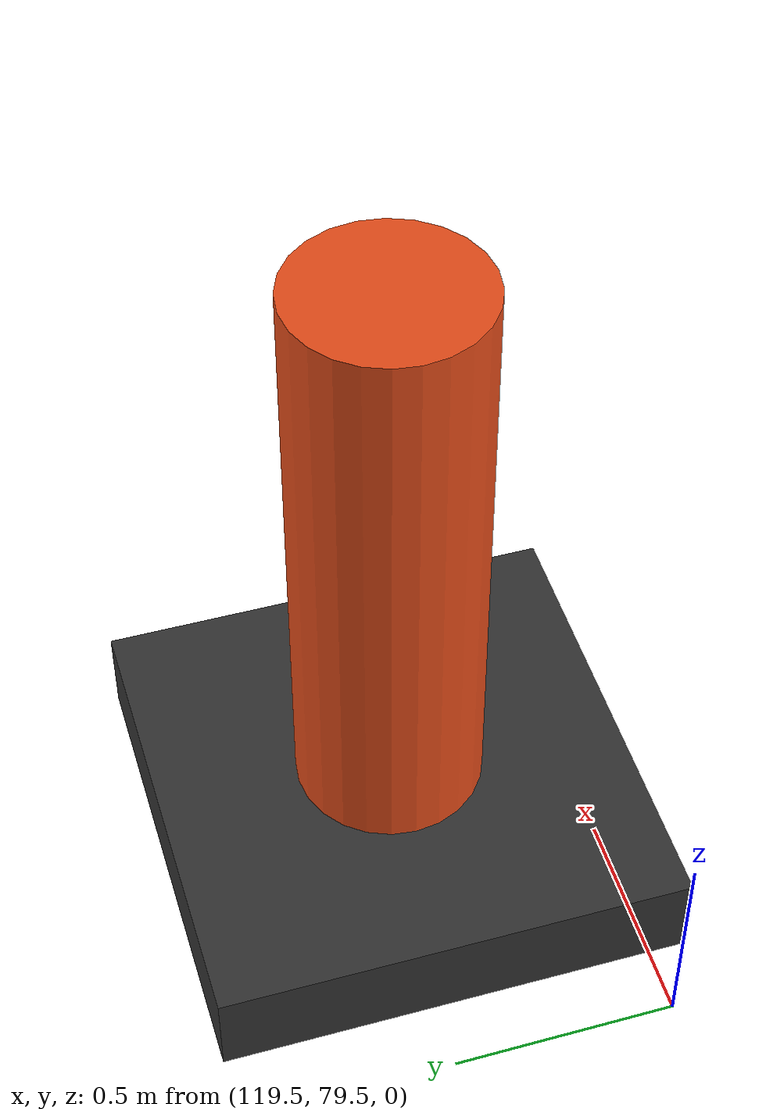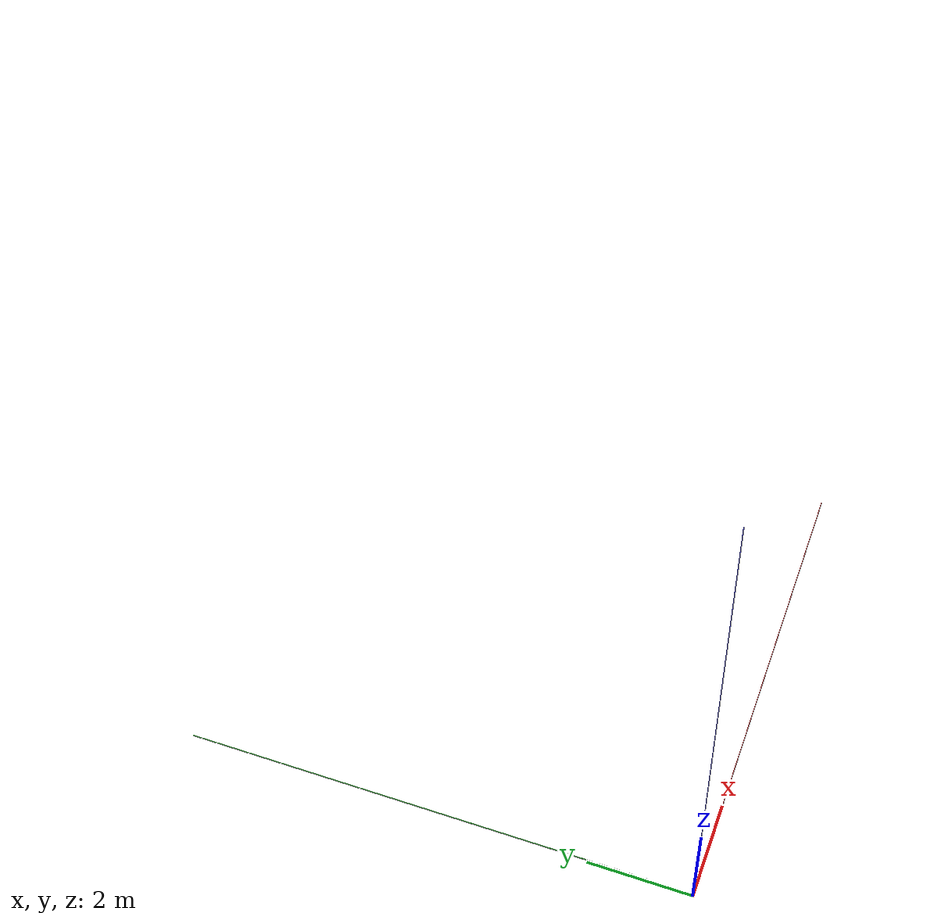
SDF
<sdf version="1.9">
 <world name="fox_hunt_iris_runway">
  <physics name="1ms" type="ignore">
   <max_step_size>0.001</max_step_size>
   <real_time_factor>1.0</real_time_factor>
  </physics>
  <plugin filename="gz-sim-physics-system" name="gz::sim::systems::Physics"/>
  <plugin filename="gz-sim-sensors-system" name="gz::sim::systems::Sensors">
   <render_engine>ogre2</render_engine>
  </plugin>
  <plugin filename="gz-sim-user-commands-system" name="gz::sim::systems::UserCommands"/>
  <plugin filename="gz-sim-scene-broadcaster-system" name="gz::sim::systems::SceneBroadcaster"/>
  <plugin filename="gz-sim-imu-system" name="gz::sim::systems::Imu"/>
  <plugin filename="gz-sim-navsat-system" name="gz::sim::systems::NavSat"/>
  <scene><ambient>1.0 1.0 1.0</ambient><background>0.8 0.8 0.8</background></scene>
  <spherical_coordinates>
   <latitude_deg>-35.363262</latitude_deg>
   <longitude_deg>149.165237</longitude_deg>
   <elevation>584</elevation>
   <heading_deg>0</heading_deg>
   <surface_model>EARTH_WGS84</surface_model>
  </spherical_coordinates>
  <light type="directional" name="sun">
   <pose>0 0 10 0 0 0</pose>
   <diffuse>0.8 0.8 0.8 1</diffuse>
   <specular>0.8 0.8 0.8 1</specular>
   <attenuation>
    <range>1000</range>
    <constant>0.9</constant>
    <linear>0.01</linear>
    <quadratic>0.001</quadratic>
   </attenuation>
   <direction>-0.5 0.1 -0.9</direction>
  </light>
  <model name="axes">
   <static>1</static>
   <link name="link">
    <visual name="r">
     <cast_shadows>0</cast_shadows>
     <pose>5 0 0.1 0 0 0</pose>
     <geometry><box><size>10 0.01 0.01</size></box></geometry>
     <material>
      <ambient>1 0 0 0.8</ambient>
      <diffuse>1 0 0 0.8</diffuse>
      <emissive>1 0 0 0.8</emissive>
      <specular>0.5 0.5 0.5 0.8</specular>
     </material>
    </visual>
    <visual name="g">
     <cast_shadows>0</cast_shadows>
     <pose>0 5 0.1 0 0 0</pose>
     <geometry><box><size>0.01 10 0.01</size></box></geometry>
     <material>
      <ambient>0 1 0 0.8</ambient>
      <diffuse>0 1 0 0.8</diffuse>
      <emissive>0 1 0 0.8</emissive>
      <specular>0.5 0.5 0.5 0.8</specular>
     </material>
    </visual>
    <visual name="b">
     <cast_shadows>0</cast_shadows>
     <pose>0 0 5.1 0 0 0</pose>
     <geometry><box><size>0.01 0.01 10</size></box></geometry>
     <material>
      <ambient>0 0 1 0.8</ambient>
      <diffuse>0 0 1 0.8</diffuse>
      <emissive>0 0 1 0.8</emissive>
      <specular>0.5 0.5 0.5 0.8</specular>
     </material>
    </visual>
    <sensor name="navsat_sensor" type="navsat"><always_on>1</always_on><update_rate>1</update_rate></sensor>
   </link>
  </model>
  <include><uri>model://fox_beacon</uri><pose>120 80 0.25 0 0 0</pose></include>
 </world>
</sdf>

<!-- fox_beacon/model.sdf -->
<sdf version="1.7">
  <model name="fox_beacon">
    <static>true</static>
    <link name="body">
      <visual name="mast">
        <geometry>
          <cylinder>
            <radius>0.2</radius>
            <length>1.5</length>
          </cylinder>
        </geometry>
        <pose>0 0 0.75 0 0 0</pose>
        <material>
          <ambient>0.9 0.3 0.1 1</ambient>
          <diffuse>0.9 0.3 0.1 1</diffuse>
        </material>
      </visual>
      <visual name="base">
        <geometry>
          <box>
            <size>1 1 0.2</size>
          </box>
        </geometry>
        <pose>0 0 0.1 0 0 0</pose>
        <material>
          <ambient>0.2 0.2 0.2 1</ambient>
          <diffuse>0.2 0.2 0.2 1</diffuse>
        </material>
      </visual>
    </link>
  </model>
</sdf>
